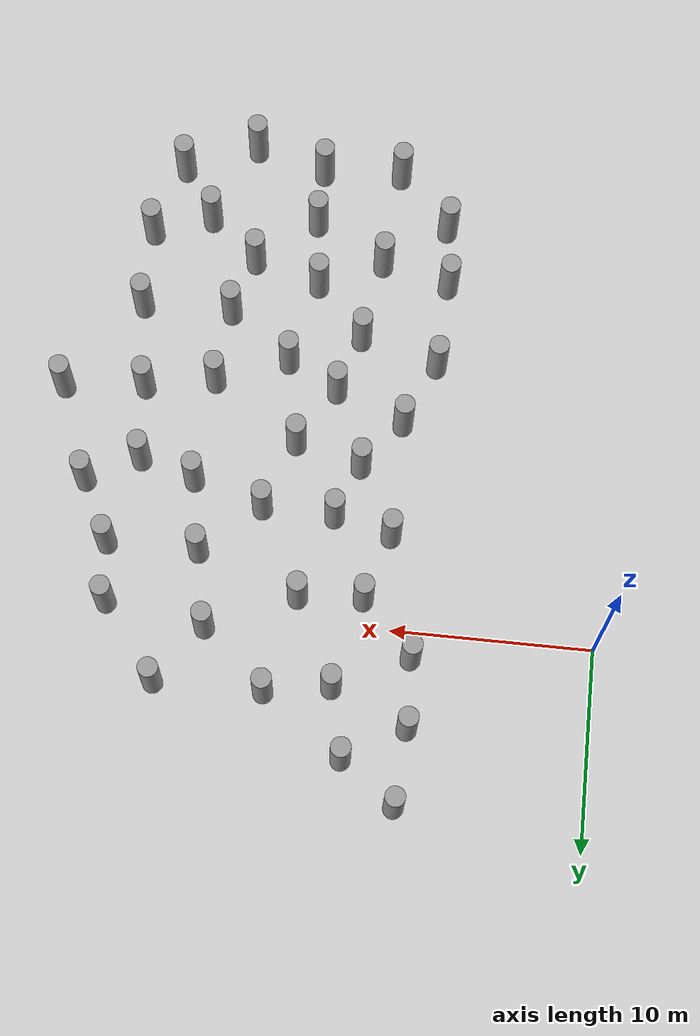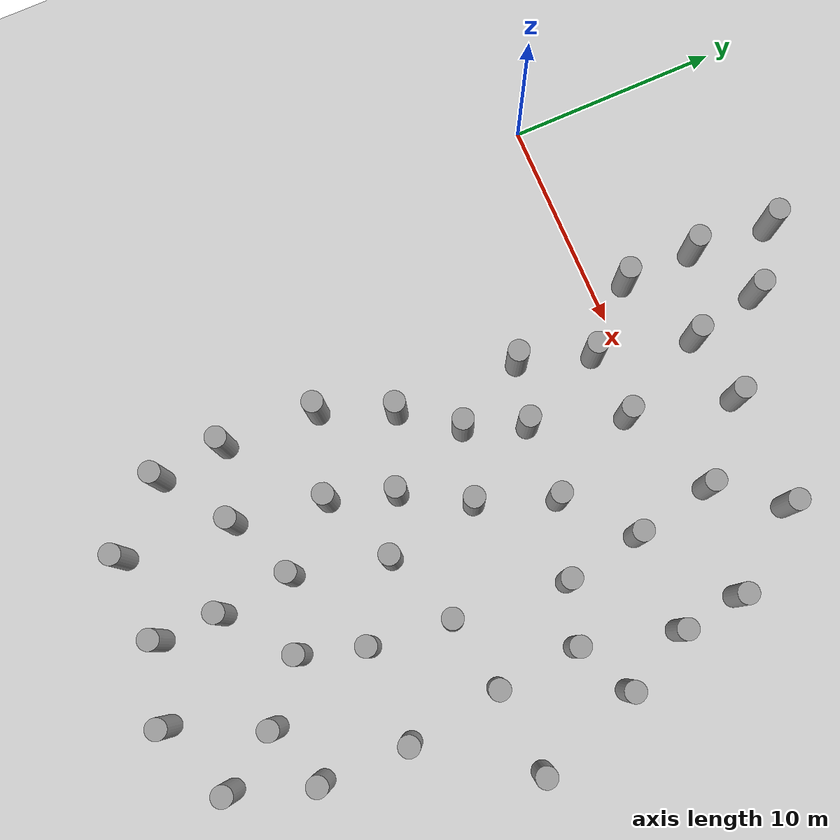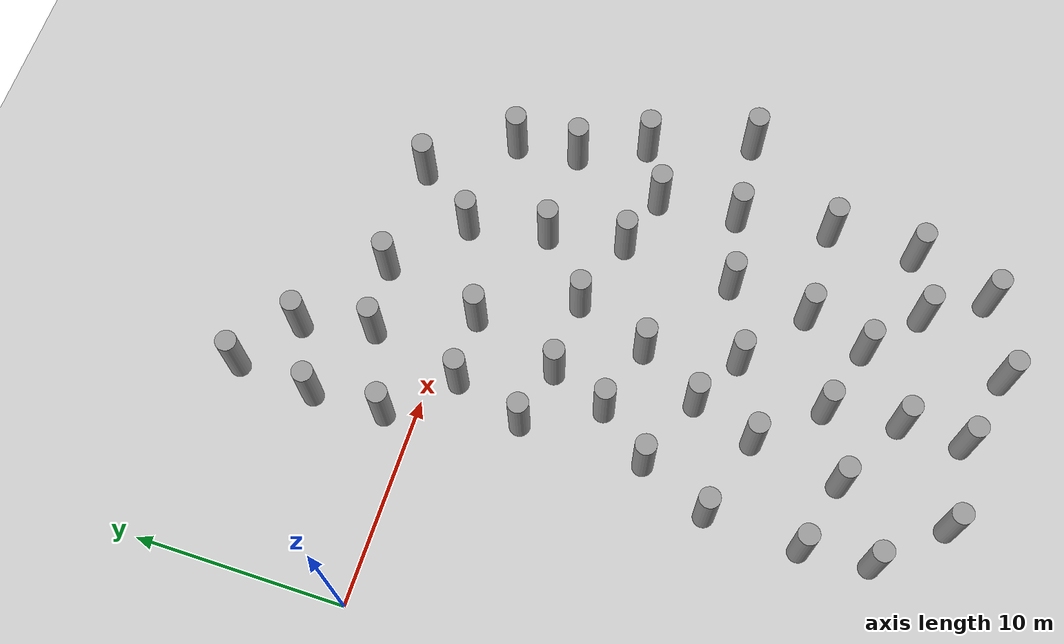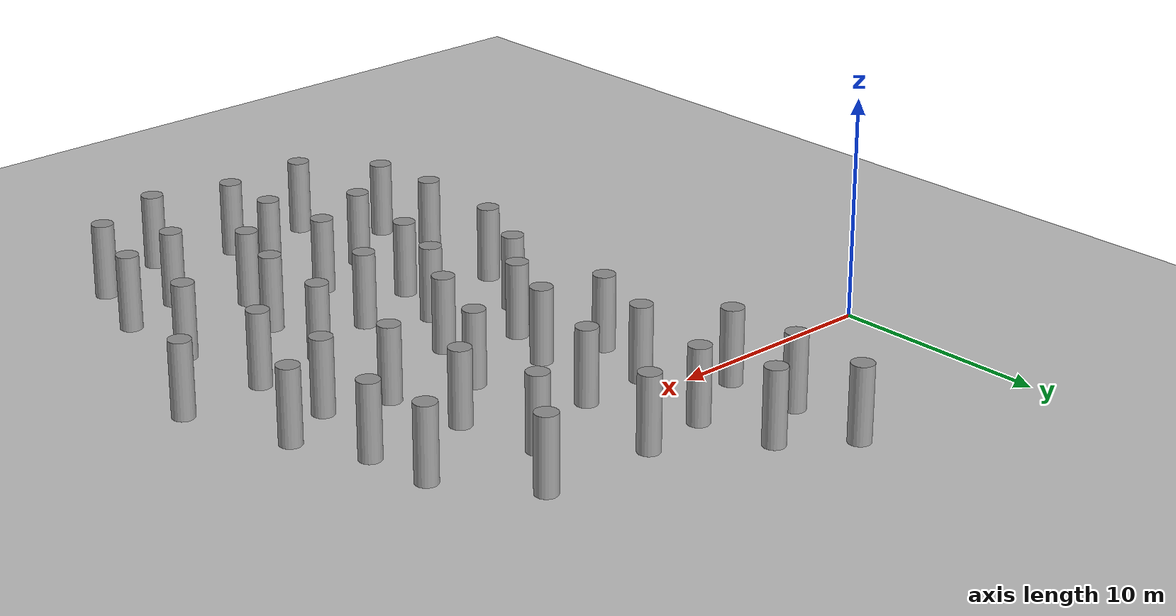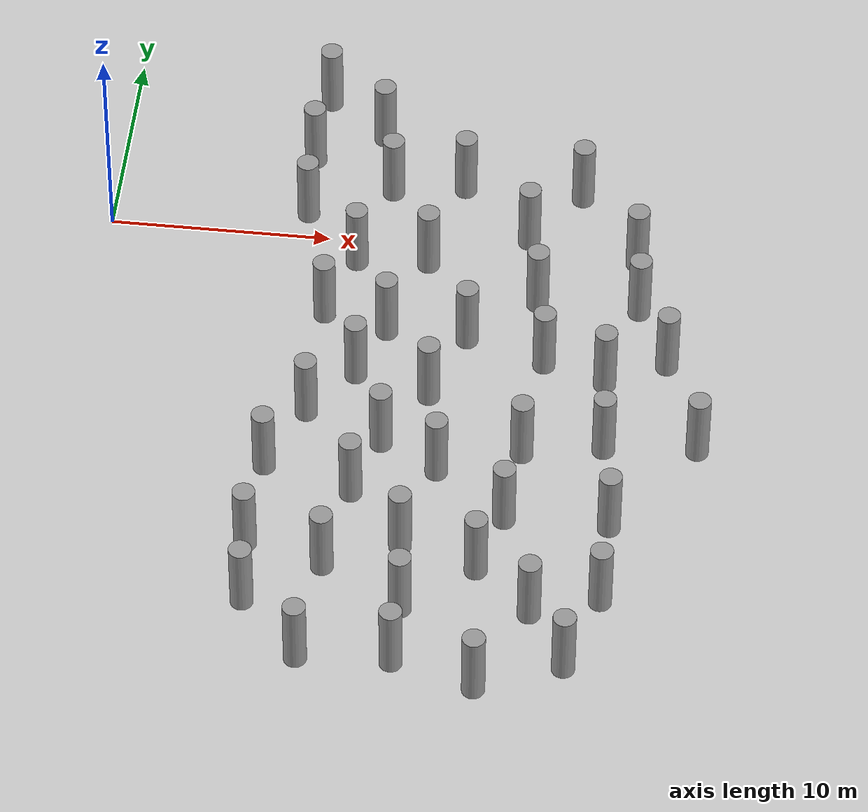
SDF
<sdf version="1.6">
 <world name="default">
  <model name="ground_plane">
   <static>1</static>
   <link name="link">
    <collision name="collision">
     <geometry><plane><normal>0 0 1</normal><size>5000 5000</size></plane></geometry>
     <surface><friction><ode><mu>1</mu><mu2>2</mu2></ode></friction></surface>
    </collision>
    <visual name="runway">
     <cast_shadows>0</cast_shadows>
     <geometry><plane><normal>0 0 1</normal><size>700 700</size></plane></geometry>
     <material>
      <script><uri>file://media/materials/scripts/gazebo.material</uri><name>Gazebo/Gray</name></script>
     </material>
    </visual>
   </link>
  </model>
  <model name="unit_cylinder_clone_2">
   <pose>8.84518 1.39912 1.71107 0 -0 -0.00011</pose>
   <link name="link">
    <inertial>
     <mass>1</mass>
     <inertia><ixx>0.145833</ixx><ixy>0</ixy><ixz>0</ixz><iyy>0.145833</iyy><iyz>0</iyz><izz>0.125</izz></inertia>
    </inertial>
    <collision name="collision">
     <geometry><cylinder><radius>0.5</radius><length>3.42215</length></cylinder></geometry>
    </collision>
    <visual name="visual">
     <geometry><cylinder><radius>0.5</radius><length>3.42215</length></cylinder></geometry>
     <material>
      <script><name>Gazebo/Grey</name><uri>file://media/materials/scripts/gazebo.material</uri></script>
     </material>
    </visual>
   </link>
  </model>
  <model name="unit_cylinder_clone_5">
   <pose>8.74427 4.88031 1.71107 0 -0 -0.000108</pose>
   <link name="link">
    <inertial>
     <mass>1</mass>
     <inertia><ixx>0.145833</ixx><ixy>0</ixy><ixz>0</ixz><iyy>0.145833</iyy><iyz>0</iyz><izz>0.125</izz></inertia>
    </inertial>
    <collision name="collision">
     <geometry><cylinder><radius>0.5</radius><length>3.42215</length></cylinder></geometry>
    </collision>
    <visual name="visual">
     <geometry><cylinder><radius>0.5</radius><length>3.42215</length></cylinder></geometry>
     <material>
      <script><name>Gazebo/Grey</name><uri>file://media/materials/scripts/gazebo.material</uri></script>
     </material>
    </visual>
   </link>
  </model>
  <model name="unit_cylinder_clone_6">
   <pose>9.05434 8.68471 1.71107 0 -0 -0.000108</pose>
   <link name="link">
    <inertial>
     <mass>1</mass>
     <inertia><ixx>0.145833</ixx><ixy>0</ixy><ixz>0</ixz><iyy>0.145833</iyy><iyz>0</iyz><izz>0.125</izz></inertia>
    </inertial>
    <collision name="collision">
     <geometry><cylinder><radius>0.5</radius><length>3.42215</length></cylinder></geometry>
    </collision>
    <visual name="visual">
     <geometry><cylinder><radius>0.5</radius><length>3.42215</length></cylinder></geometry>
     <material>
      <script><name>Gazebo/Grey</name><uri>file://media/materials/scripts/gazebo.material</uri></script>
     </material>
    </visual>
   </link>
  </model>
  <model name="unit_cylinder_clone_3_clone">
   <pose>11.3885 -1.34487 1.71107 0 -0 -0.00011</pose>
   <link name="link">
    <inertial>
     <mass>1</mass>
     <inertia><ixx>0.145833</ixx><ixy>0</ixy><ixz>0</ixz><iyy>0.145833</iyy><iyz>0</iyz><izz>0.125</izz></inertia>
    </inertial>
    <collision name="collision">
     <geometry><cylinder><radius>0.5</radius><length>3.42215</length></cylinder></geometry>
    </collision>
    <visual name="visual">
     <geometry><cylinder><radius>0.5</radius><length>3.42215</length></cylinder></geometry>
     <material>
      <script><name>Gazebo/Grey</name><uri>file://media/materials/scripts/gazebo.material</uri></script>
     </material>
    </visual>
   </link>
  </model>
  <model name="unit_cylinder_clone_3_clone_2">
   <pose>19.0047 0.78443 1.71107 0 -0 -0.000109</pose>
   <link name="link">
    <inertial>
     <mass>1</mass>
     <inertia><ixx>0.145833</ixx><ixy>0</ixy><ixz>0</ixz><iyy>0.145833</iyy><iyz>0</iyz><izz>0.125</izz></inertia>
    </inertial>
    <collision name="collision">
     <geometry><cylinder><radius>0.5</radius><length>3.42215</length></cylinder></geometry>
    </collision>
    <visual name="visual">
     <geometry><cylinder><radius>0.5</radius><length>3.42215</length></cylinder></geometry>
     <material>
      <script><name>Gazebo/Grey</name><uri>file://media/materials/scripts/gazebo.material</uri></script>
     </material>
    </visual>
   </link>
  </model>
  <model name="unit_cylinder_clone_3_clone_5">
   <pose>23.9667 -0.03681 1.71107 0 -0 -0.000108</pose>
   <link name="link">
    <inertial>
     <mass>1</mass>
     <inertia><ixx>0.145833</ixx><ixy>0</ixy><ixz>0</ixz><iyy>0.145833</iyy><iyz>0</iyz><izz>0.125</izz></inertia>
    </inertial>
    <collision name="collision">
     <geometry><cylinder><radius>0.5</radius><length>3.42215</length></cylinder></geometry>
    </collision>
    <visual name="visual">
     <geometry><cylinder><radius>0.5</radius><length>3.42215</length></cylinder></geometry>
     <material>
      <script><name>Gazebo/Grey</name><uri>file://media/materials/scripts/gazebo.material</uri></script>
     </material>
    </visual>
   </link>
  </model>
  <model name="unit_cylinder_clone_3_clone_6">
   <pose>19.7316 -3.02062 1.71107 0 -0 -0.000108</pose>
   <link name="link">
    <inertial>
     <mass>1</mass>
     <inertia><ixx>0.145833</ixx><ixy>0</ixy><ixz>0</ixz><iyy>0.145833</iyy><iyz>0</iyz><izz>0.125</izz></inertia>
    </inertial>
    <collision name="collision">
     <geometry><cylinder><radius>0.5</radius><length>3.42215</length></cylinder></geometry>
    </collision>
    <visual name="visual">
     <geometry><cylinder><radius>0.5</radius><length>3.42215</length></cylinder></geometry>
     <material>
      <script><name>Gazebo/Grey</name><uri>file://media/materials/scripts/gazebo.material</uri></script>
     </material>
    </visual>
   </link>
  </model>
  <model name="unit_cylinder_clone_3_clone_8">
   <pose>20.3589 -6.70544 1.71107 0 -0 -0.000107</pose>
   <link name="link">
    <inertial>
     <mass>1</mass>
     <inertia><ixx>0.145833</ixx><ixy>0</ixy><ixz>0</ixz><iyy>0.145833</iyy><iyz>0</iyz><izz>0.125</izz></inertia>
    </inertial>
    <collision name="collision">
     <geometry><cylinder><radius>0.5</radius><length>3.42215</length></cylinder></geometry>
    </collision>
    <visual name="visual">
     <geometry><cylinder><radius>0.5</radius><length>3.42215</length></cylinder></geometry>
     <material>
      <script><name>Gazebo/Grey</name><uri>file://media/materials/scripts/gazebo.material</uri></script>
     </material>
    </visual>
   </link>
  </model>
  <model name="unit_cylinder_clone_3_clone_10">
   <pose>23.1368 -7.56315 1.71107 0 -0 -0.000107</pose>
   <link name="link">
    <inertial>
     <mass>1</mass>
     <inertia><ixx>0.145833</ixx><ixy>0</ixy><ixz>0</ixz><iyy>0.145833</iyy><iyz>0</iyz><izz>0.125</izz></inertia>
    </inertial>
    <collision name="collision">
     <geometry><cylinder><radius>0.5</radius><length>3.42215</length></cylinder></geometry>
    </collision>
    <visual name="visual">
     <geometry><cylinder><radius>0.5</radius><length>3.42215</length></cylinder></geometry>
     <material>
      <script><name>Gazebo/Grey</name><uri>file://media/materials/scripts/gazebo.material</uri></script>
     </material>
    </visual>
   </link>
  </model>
  <model name="unit_cylinder_clone_3_clone_12">
   <pose>23.4105 -11.4427 1.71107 0 -0 -0.000106</pose>
   <link name="link">
    <inertial>
     <mass>1</mass>
     <inertia><ixx>0.145833</ixx><ixy>0</ixy><ixz>0</ixz><iyy>0.145833</iyy><iyz>0</iyz><izz>0.125</izz></inertia>
    </inertial>
    <collision name="collision">
     <geometry><cylinder><radius>0.5</radius><length>3.42215</length></cylinder></geometry>
    </collision>
    <visual name="visual">
     <geometry><cylinder><radius>0.5</radius><length>3.42215</length></cylinder></geometry>
     <material>
      <script><name>Gazebo/Grey</name><uri>file://media/materials/scripts/gazebo.material</uri></script>
     </material>
    </visual>
   </link>
  </model>
  <model name="unit_cylinder_clone_3_clone_14">
   <pose>19.8819 -12.0865 1.71107 0 -0 -0.000106</pose>
   <link name="link">
    <inertial>
     <mass>1</mass>
     <inertia><ixx>0.145833</ixx><ixy>0</ixy><ixz>0</ixz><iyy>0.145833</iyy><iyz>0</iyz><izz>0.125</izz></inertia>
    </inertial>
    <collision name="collision">
     <geometry><cylinder><radius>0.5</radius><length>3.42215</length></cylinder></geometry>
    </collision>
    <visual name="visual">
     <geometry><cylinder><radius>0.5</radius><length>3.42215</length></cylinder></geometry>
     <material>
      <script><name>Gazebo/Grey</name><uri>file://media/materials/scripts/gazebo.material</uri></script>
     </material>
    </visual>
   </link>
  </model>
  <model name="unit_cylinder_clone_3_clone_18">
   <pose>21.0499 -21.0739 1.71107 0 -0 -0.000105</pose>
   <link name="link">
    <inertial>
     <mass>1</mass>
     <inertia><ixx>0.145833</ixx><ixy>0</ixy><ixz>0</ixz><iyy>0.145833</iyy><iyz>0</iyz><izz>0.125</izz></inertia>
    </inertial>
    <collision name="collision">
     <geometry><cylinder><radius>0.5</radius><length>3.42215</length></cylinder></geometry>
    </collision>
    <visual name="visual">
     <geometry><cylinder><radius>0.5</radius><length>3.42215</length></cylinder></geometry>
     <material>
      <script><name>Gazebo/Grey</name><uri>file://media/materials/scripts/gazebo.material</uri></script>
     </material>
    </visual>
   </link>
  </model>
  <model name="unit_cylinder_clone_3_clone_19">
   <pose>18.5573 -18.8968 1.71107 0 -0 -0.000104</pose>
   <link name="link">
    <inertial>
     <mass>1</mass>
     <inertia><ixx>0.145833</ixx><ixy>0</ixy><ixz>0</ixz><iyy>0.145833</iyy><iyz>0</iyz><izz>0.125</izz></inertia>
    </inertial>
    <collision name="collision">
     <geometry><cylinder><radius>0.5</radius><length>3.42215</length></cylinder></geometry>
    </collision>
    <visual name="visual">
     <geometry><cylinder><radius>0.5</radius><length>3.42215</length></cylinder></geometry>
     <material>
      <script><name>Gazebo/Grey</name><uri>file://media/materials/scripts/gazebo.material</uri></script>
     </material>
    </visual>
   </link>
  </model>
  <model name="unit_cylinder_clone_3_clone_20">
   <pose>23.995 -20.051 1.71107 0 -0 -0.000104</pose>
   <link name="link">
    <inertial>
     <mass>1</mass>
     <inertia><ixx>0.145833</ixx><ixy>0</ixy><ixz>0</ixz><iyy>0.145833</iyy><iyz>0</iyz><izz>0.125</izz></inertia>
    </inertial>
    <collision name="collision">
     <geometry><cylinder><radius>0.5</radius><length>3.42215</length></cylinder></geometry>
    </collision>
    <visual name="visual">
     <geometry><cylinder><radius>0.5</radius><length>3.42215</length></cylinder></geometry>
     <material>
      <script><name>Gazebo/Grey</name><uri>file://media/materials/scripts/gazebo.material</uri></script>
     </material>
    </visual>
   </link>
  </model>
  <model name="unit_cylinder_clone_3_clone_21">
   <pose>22.7638 -23.8535 1.71107 0 -0 -0.000109</pose>
   <link name="link">
    <inertial>
     <mass>1</mass>
     <inertia><ixx>0.145833</ixx><ixy>0</ixy><ixz>0</ixz><iyy>0.145833</iyy><iyz>0</iyz><izz>0.125</izz></inertia>
    </inertial>
    <collision name="collision">
     <geometry><cylinder><radius>0.5</radius><length>3.42215</length></cylinder></geometry>
    </collision>
    <visual name="visual">
     <geometry><cylinder><radius>0.5</radius><length>3.42215</length></cylinder></geometry>
     <material>
      <script><name>Gazebo/Grey</name><uri>file://media/materials/scripts/gazebo.material</uri></script>
     </material>
    </visual>
   </link>
  </model>
  <model name="unit_cylinder_clone_3_clone_25">
   <pose>15.1824 -17.8715 1.71107 0 -0 -0.000109</pose>
   <link name="link">
    <inertial>
     <mass>1</mass>
     <inertia><ixx>0.145833</ixx><ixy>0</ixy><ixz>0</ixz><iyy>0.145833</iyy><iyz>0</iyz><izz>0.125</izz></inertia>
    </inertial>
    <collision name="collision">
     <geometry><cylinder><radius>0.5</radius><length>3.42215</length></cylinder></geometry>
    </collision>
    <visual name="visual">
     <geometry><cylinder><radius>0.5</radius><length>3.42215</length></cylinder></geometry>
     <material>
      <script><name>Gazebo/Grey</name><uri>file://media/materials/scripts/gazebo.material</uri></script>
     </material>
    </visual>
   </link>
  </model>
  <model name="unit_cylinder_clone_3_clone_27">
   <pose>11.9782 -19.3728 1.71107 0 -0 -0.00011</pose>
   <link name="link">
    <inertial>
     <mass>1</mass>
     <inertia><ixx>0.145833</ixx><ixy>0</ixy><ixz>0</ixz><iyy>0.145833</iyy><iyz>0</iyz><izz>0.125</izz></inertia>
    </inertial>
    <collision name="collision">
     <geometry><cylinder><radius>0.5</radius><length>3.42215</length></cylinder></geometry>
    </collision>
    <visual name="visual">
     <geometry><cylinder><radius>0.5</radius><length>3.42215</length></cylinder></geometry>
     <material>
      <script><name>Gazebo/Grey</name><uri>file://media/materials/scripts/gazebo.material</uri></script>
     </material>
    </visual>
   </link>
  </model>
  <model name="unit_cylinder_clone_3_clone_28">
   <pose>15.5089 -24.3234 1.71107 0 -0 -0.00011</pose>
   <link name="link">
    <inertial>
     <mass>1</mass>
     <inertia><ixx>0.145833</ixx><ixy>0</ixy><ixz>0</ixz><iyy>0.145833</iyy><iyz>0</iyz><izz>0.125</izz></inertia>
    </inertial>
    <collision name="collision">
     <geometry><cylinder><radius>0.5</radius><length>3.42215</length></cylinder></geometry>
    </collision>
    <visual name="visual">
     <geometry><cylinder><radius>0.5</radius><length>3.42215</length></cylinder></geometry>
     <material>
      <script><name>Gazebo/Grey</name><uri>file://media/materials/scripts/gazebo.material</uri></script>
     </material>
    </visual>
   </link>
  </model>
  <model name="unit_cylinder_clone_3_clone_29">
   <pose>11.4692 -24.5179 1.71107 0 -0 -0.000109</pose>
   <link name="link">
    <inertial>
     <mass>1</mass>
     <inertia><ixx>0.145833</ixx><ixy>0</ixy><ixz>0</ixz><iyy>0.145833</iyy><iyz>0</iyz><izz>0.125</izz></inertia>
    </inertial>
    <collision name="collision">
     <geometry><cylinder><radius>0.5</radius><length>3.42215</length></cylinder></geometry>
    </collision>
    <visual name="visual">
     <geometry><cylinder><radius>0.5</radius><length>3.42215</length></cylinder></geometry>
     <material>
      <script><name>Gazebo/Grey</name><uri>file://media/materials/scripts/gazebo.material</uri></script>
     </material>
    </visual>
   </link>
  </model>
  <model name="unit_cylinder_clone_3_clone_30">
   <pose>8.81882 -21.6578 1.71107 0 -0 -0.000109</pose>
   <link name="link">
    <inertial>
     <mass>1</mass>
     <inertia><ixx>0.145833</ixx><ixy>0</ixy><ixz>0</ixz><iyy>0.145833</iyy><iyz>0</iyz><izz>0.125</izz></inertia>
    </inertial>
    <collision name="collision">
     <geometry><cylinder><radius>0.5</radius><length>3.42215</length></cylinder></geometry>
    </collision>
    <visual name="visual">
     <geometry><cylinder><radius>0.5</radius><length>3.42215</length></cylinder></geometry>
     <material>
      <script><name>Gazebo/Grey</name><uri>file://media/materials/scripts/gazebo.material</uri></script>
     </material>
    </visual>
   </link>
  </model>
  <model name="unit_cylinder_clone_3_clone_31">
   <pose>8.5434 -18.4531 1.71107 0 -0 -0.00011</pose>
   <link name="link">
    <inertial>
     <mass>1</mass>
     <inertia><ixx>0.145833</ixx><ixy>0</ixy><ixz>0</ixz><iyy>0.145833</iyy><iyz>0</iyz><izz>0.125</izz></inertia>
    </inertial>
    <collision name="collision">
     <geometry><cylinder><radius>0.5</radius><length>3.42215</length></cylinder></geometry>
    </collision>
    <visual name="visual">
     <geometry><cylinder><radius>0.5</radius><length>3.42215</length></cylinder></geometry>
     <material>
      <script><name>Gazebo/Grey</name><uri>file://media/materials/scripts/gazebo.material</uri></script>
     </material>
    </visual>
   </link>
  </model>
  <model name="unit_cylinder_clone_3_clone_33">
   <pose>19.1082 -25.3727 1.71107 0 -0 -0.000109</pose>
   <link name="link">
    <inertial>
     <mass>1</mass>
     <inertia><ixx>0.145833</ixx><ixy>0</ixy><ixz>0</ixz><iyy>0.145833</iyy><iyz>0</iyz><izz>0.125</izz></inertia>
    </inertial>
    <collision name="collision">
     <geometry><cylinder><radius>0.5</radius><length>3.42215</length></cylinder></geometry>
    </collision>
    <visual name="visual">
     <geometry><cylinder><radius>0.5</radius><length>3.42215</length></cylinder></geometry>
     <material>
      <script><name>Gazebo/Grey</name><uri>file://media/materials/scripts/gazebo.material</uri></script>
     </material>
    </visual>
   </link>
  </model>
  <model name="unit_cylinder_clone_3_clone_20_clone">
   <pose>24.0227 -15.8855 1.71107 0 -0 -0.000104</pose>
   <link name="link">
    <inertial>
     <mass>1</mass>
     <inertia><ixx>0.145833</ixx><ixy>0</ixy><ixz>0</ixz><iyy>0.145833</iyy><iyz>0</iyz><izz>0.125</izz></inertia>
    </inertial>
    <collision name="collision">
     <geometry><cylinder><radius>0.5</radius><length>3.42215</length></cylinder></geometry>
    </collision>
    <visual name="visual">
     <geometry><cylinder><radius>0.5</radius><length>3.42215</length></cylinder></geometry>
     <material>
      <script><name>Gazebo/Grey</name><uri>file://media/materials/scripts/gazebo.material</uri></script>
     </material>
    </visual>
   </link>
  </model>
  <model name="unit_cylinder_clone_3_clone_20_clone_0">
   <pose>16.2819 -13.4967 1.71107 0 -0 -0.000104</pose>
   <link name="link">
    <inertial>
     <mass>1</mass>
     <inertia><ixx>0.145833</ixx><ixy>0</ixy><ixz>0</ixz><iyy>0.145833</iyy><iyz>0</iyz><izz>0.125</izz></inertia>
    </inertial>
    <collision name="collision">
     <geometry><cylinder><radius>0.5</radius><length>3.42215</length></cylinder></geometry>
    </collision>
    <visual name="visual">
     <geometry><cylinder><radius>0.5</radius><length>3.42215</length></cylinder></geometry>
     <material>
      <script><name>Gazebo/Grey</name><uri>file://media/materials/scripts/gazebo.material</uri></script>
     </material>
    </visual>
   </link>
  </model>
  <model name="unit_cylinder_clone_3_clone_20_clone_1">
   <pose>15.4767 -9.13401 1.71107 0 -0 -0.000104</pose>
   <link name="link">
    <inertial>
     <mass>1</mass>
     <inertia><ixx>0.145833</ixx><ixy>0</ixy><ixz>0</ixz><iyy>0.145833</iyy><iyz>0</iyz><izz>0.125</izz></inertia>
    </inertial>
    <collision name="collision">
     <geometry><cylinder><radius>0.5</radius><length>3.42215</length></cylinder></geometry>
    </collision>
    <visual name="visual">
     <geometry><cylinder><radius>0.5</radius><length>3.42215</length></cylinder></geometry>
     <material>
      <script><name>Gazebo/Grey</name><uri>file://media/materials/scripts/gazebo.material</uri></script>
     </material>
    </visual>
   </link>
  </model>
  <model name="unit_cylinder_clone_3_clone_20_clone_2">
   <pose>16.8135 -5.57427 1.71107 0 -0 -0.000104</pose>
   <link name="link">
    <inertial>
     <mass>1</mass>
     <inertia><ixx>0.145833</ixx><ixy>0</ixy><ixz>0</ixz><iyy>0.145833</iyy><iyz>0</iyz><izz>0.125</izz></inertia>
    </inertial>
    <collision name="collision">
     <geometry><cylinder><radius>0.5</radius><length>3.42215</length></cylinder></geometry>
    </collision>
    <visual name="visual">
     <geometry><cylinder><radius>0.5</radius><length>3.42215</length></cylinder></geometry>
     <material>
      <script><name>Gazebo/Grey</name><uri>file://media/materials/scripts/gazebo.material</uri></script>
     </material>
    </visual>
   </link>
  </model>
  <model name="unit_cylinder_clone_3_clone_20_clone_3">
   <pose>13.7002 -12.1146 1.71107 0 -0 -0.000104</pose>
   <link name="link">
    <inertial>
     <mass>1</mass>
     <inertia><ixx>0.145833</ixx><ixy>0</ixy><ixz>0</ixz><iyy>0.145833</iyy><iyz>0</iyz><izz>0.125</izz></inertia>
    </inertial>
    <collision name="collision">
     <geometry><cylinder><radius>0.5</radius><length>3.42215</length></cylinder></geometry>
    </collision>
    <visual name="visual">
     <geometry><cylinder><radius>0.5</radius><length>3.42215</length></cylinder></geometry>
     <material>
      <script><name>Gazebo/Grey</name><uri>file://media/materials/scripts/gazebo.material</uri></script>
     </material>
    </visual>
   </link>
  </model>
  <model name="unit_cylinder_clone_3_clone_20_clone_4">
   <pose>12.7168 -15.1124 1.71107 0 -0 -0.000103</pose>
   <link name="link">
    <inertial>
     <mass>1</mass>
     <inertia><ixx>0.145833</ixx><ixy>0</ixy><ixz>0</ixz><iyy>0.145833</iyy><iyz>0</iyz><izz>0.125</izz></inertia>
    </inertial>
    <collision name="collision">
     <geometry><cylinder><radius>0.5</radius><length>3.42215</length></cylinder></geometry>
    </collision>
    <visual name="visual">
     <geometry><cylinder><radius>0.5</radius><length>3.42215</length></cylinder></geometry>
     <material>
      <script><name>Gazebo/Grey</name><uri>file://media/materials/scripts/gazebo.material</uri></script>
     </material>
    </visual>
   </link>
  </model>
  <model name="unit_cylinder_clone_3_clone_20_clone_5">
   <pose>8.78435 -13.9792 1.71107 0 -0 -0.000103</pose>
   <link name="link">
    <inertial>
     <mass>1</mass>
     <inertia><ixx>0.145833</ixx><ixy>0</ixy><ixz>0</ixz><iyy>0.145833</iyy><iyz>0</iyz><izz>0.125</izz></inertia>
    </inertial>
    <collision name="collision">
     <geometry><cylinder><radius>0.5</radius><length>3.42215</length></cylinder></geometry>
    </collision>
    <visual name="visual">
     <geometry><cylinder><radius>0.5</radius><length>3.42215</length></cylinder></geometry>
     <material>
      <script><name>Gazebo/Grey</name><uri>file://media/materials/scripts/gazebo.material</uri></script>
     </material>
    </visual>
   </link>
  </model>
  <model name="unit_cylinder_clone_3_clone_20_clone_6">
   <pose>10.2291 -10.6693 1.71107 0 -0 -0.000103</pose>
   <link name="link">
    <inertial>
     <mass>1</mass>
     <inertia><ixx>0.145833</ixx><ixy>0</ixy><ixz>0</ixz><iyy>0.145833</iyy><iyz>0</iyz><izz>0.125</izz></inertia>
    </inertial>
    <collision name="collision">
     <geometry><cylinder><radius>0.5</radius><length>3.42215</length></cylinder></geometry>
    </collision>
    <visual name="visual">
     <geometry><cylinder><radius>0.5</radius><length>3.42215</length></cylinder></geometry>
     <material>
      <script><name>Gazebo/Grey</name><uri>file://media/materials/scripts/gazebo.material</uri></script>
     </material>
    </visual>
   </link>
  </model>
  <model name="unit_cylinder_clone_3_clone_20_clone_8">
   <pose>12.1356 -8.21148 1.71107 0 -0 -0.000102</pose>
   <link name="link">
    <inertial>
     <mass>1</mass>
     <inertia><ixx>0.145833</ixx><ixy>0</ixy><ixz>0</ixz><iyy>0.145833</iyy><iyz>0</iyz><izz>0.125</izz></inertia>
    </inertial>
    <collision name="collision">
     <geometry><cylinder><radius>0.5</radius><length>3.42215</length></cylinder></geometry>
    </collision>
    <visual name="visual">
     <geometry><cylinder><radius>0.5</radius><length>3.42215</length></cylinder></geometry>
     <material>
      <script><name>Gazebo/Grey</name><uri>file://media/materials/scripts/gazebo.material</uri></script>
     </material>
    </visual>
   </link>
  </model>
  <model name="unit_cylinder_clone_3_clone_20_clone_9">
   <pose>13.203 -5.46208 1.71107 0 -0 -0.000102</pose>
   <link name="link">
    <inertial>
     <mass>1</mass>
     <inertia><ixx>0.145833</ixx><ixy>0</ixy><ixz>0</ixz><iyy>0.145833</iyy><iyz>0</iyz><izz>0.125</izz></inertia>
    </inertial>
    <collision name="collision">
     <geometry><cylinder><radius>0.5</radius><length>3.42215</length></cylinder></geometry>
    </collision>
    <visual name="visual">
     <geometry><cylinder><radius>0.5</radius><length>3.42215</length></cylinder></geometry>
     <material>
      <script><name>Gazebo/Grey</name><uri>file://media/materials/scripts/gazebo.material</uri></script>
     </material>
    </visual>
   </link>
  </model>
  <model name="unit_cylinder_clone_3_clone_20_clone_10">
   <pose>10.3207 -4.71799 1.71107 0 -0 -0.000102</pose>
   <link name="link">
    <inertial>
     <mass>1</mass>
     <inertia><ixx>0.145833</ixx><ixy>0</ixy><ixz>0</ixz><iyy>0.145833</iyy><iyz>0</iyz><izz>0.125</izz></inertia>
    </inertial>
    <collision name="collision">
     <geometry><cylinder><radius>0.5</radius><length>3.42215</length></cylinder></geometry>
    </collision>
    <visual name="visual">
     <geometry><cylinder><radius>0.5</radius><length>3.42215</length></cylinder></geometry>
     <material>
      <script><name>Gazebo/Grey</name><uri>file://media/materials/scripts/gazebo.material</uri></script>
     </material>
    </visual>
   </link>
  </model>
  <model name="unit_cylinder_clone_3_clone_19_clone">
   <pose>19.4734 -15.9285 1.71107 0 -0 -0.000104</pose>
   <link name="link">
    <inertial>
     <mass>1</mass>
     <inertia><ixx>0.145833</ixx><ixy>0</ixy><ixz>0</ixz><iyy>0.145833</iyy><iyz>0</iyz><izz>0.125</izz></inertia>
    </inertial>
    <collision name="collision">
     <geometry><cylinder><radius>0.5</radius><length>3.42215</length></cylinder></geometry>
    </collision>
    <visual name="visual">
     <geometry><cylinder><radius>0.5</radius><length>3.42215</length></cylinder></geometry>
     <material>
      <script><name>Gazebo/Grey</name><uri>file://media/materials/scripts/gazebo.material</uri></script>
     </material>
    </visual>
   </link>
  </model>
  <model name="unit_cylinder_clone_3_clone_19_clone_0">
   <pose>15.5623 -21.3516 1.71107 0 -0 -0.000104</pose>
   <link name="link">
    <inertial>
     <mass>1</mass>
     <inertia><ixx>0.145833</ixx><ixy>0</ixy><ixz>0</ixz><iyy>0.145833</iyy><iyz>0</iyz><izz>0.125</izz></inertia>
    </inertial>
    <collision name="collision">
     <geometry><cylinder><radius>0.5</radius><length>3.42215</length></cylinder></geometry>
    </collision>
    <visual name="visual">
     <geometry><cylinder><radius>0.5</radius><length>3.42215</length></cylinder></geometry>
     <material>
      <script><name>Gazebo/Grey</name><uri>file://media/materials/scripts/gazebo.material</uri></script>
     </material>
    </visual>
   </link>
  </model>
  <model name="unit_cylinder_clone_3_clone_19_clone_4">
   <pose>12.5413 3.20051 1.71107 0 -0 -0.000105</pose>
   <link name="link">
    <inertial>
     <mass>1</mass>
     <inertia><ixx>0.145833</ixx><ixy>0</ixy><ixz>0</ixz><iyy>0.145833</iyy><iyz>0</iyz><izz>0.125</izz></inertia>
    </inertial>
    <collision name="collision">
     <geometry><cylinder><radius>0.5</radius><length>3.42215</length></cylinder></geometry>
    </collision>
    <visual name="visual">
     <geometry><cylinder><radius>0.5</radius><length>3.42215</length></cylinder></geometry>
     <material>
      <script><name>Gazebo/Grey</name><uri>file://media/materials/scripts/gazebo.material</uri></script>
     </material>
    </visual>
   </link>
  </model>
  <model name="unit_cylinder_clone_3_clone_19_clone_5">
   <pose>15.8142 3.7263 1.71107 0 -0 -0.000104</pose>
   <link name="link">
    <inertial>
     <mass>1</mass>
     <inertia><ixx>0.145833</ixx><ixy>0</ixy><ixz>0</ixz><iyy>0.145833</iyy><iyz>0</iyz><izz>0.125</izz></inertia>
    </inertial>
    <collision name="collision">
     <geometry><cylinder><radius>0.5</radius><length>3.42215</length></cylinder></geometry>
    </collision>
    <visual name="visual">
     <geometry><cylinder><radius>0.5</radius><length>3.42215</length></cylinder></geometry>
     <material>
      <script><name>Gazebo/Grey</name><uri>file://media/materials/scripts/gazebo.material</uri></script>
     </material>
    </visual>
   </link>
  </model>
  <model name="unit_cylinder_clone_3_clone_19_clone_6">
   <pose>21.1973 3.72672 1.71107 0 -0 -0.000104</pose>
   <link name="link">
    <inertial>
     <mass>1</mass>
     <inertia><ixx>0.145833</ixx><ixy>0</ixy><ixz>0</ixz><iyy>0.145833</iyy><iyz>0</iyz><izz>0.125</izz></inertia>
    </inertial>
    <collision name="collision">
     <geometry><cylinder><radius>0.5</radius><length>3.42215</length></cylinder></geometry>
    </collision>
    <visual name="visual">
     <geometry><cylinder><radius>0.5</radius><length>3.42215</length></cylinder></geometry>
     <material>
      <script><name>Gazebo/Grey</name><uri>file://media/materials/scripts/gazebo.material</uri></script>
     </material>
    </visual>
   </link>
  </model>
  <model name="unit_cylinder_clone_3_clone_19_clone_7">
   <pose>11.7722 6.63019 1.71107 0 -0 -0.000105</pose>
   <link name="link">
    <inertial>
     <mass>1</mass>
     <inertia><ixx>0.145833</ixx><ixy>0</ixy><ixz>0</ixz><iyy>0.145833</iyy><iyz>0</iyz><izz>0.125</izz></inertia>
    </inertial>
    <collision name="collision">
     <geometry><cylinder><radius>0.5</radius><length>3.42215</length></cylinder></geometry>
    </collision>
    <visual name="visual">
     <geometry><cylinder><radius>0.5</radius><length>3.42215</length></cylinder></geometry>
     <material>
      <script><name>Gazebo/Grey</name><uri>file://media/materials/scripts/gazebo.material</uri></script>
     </material>
    </visual>
   </link>
  </model>
  <model name="unit_cylinder_clone_3_clone_19_clone_8">
   <pose>14.615 -1.15302 1.71107 0 -0 -0.000105</pose>
   <link name="link">
    <inertial>
     <mass>1</mass>
     <inertia><ixx>0.145833</ixx><ixy>0</ixy><ixz>0</ixz><iyy>0.145833</iyy><iyz>0</iyz><izz>0.125</izz></inertia>
    </inertial>
    <collision name="collision">
     <geometry><cylinder><radius>0.5</radius><length>3.42215</length></cylinder></geometry>
    </collision>
    <visual name="visual">
     <geometry><cylinder><radius>0.5</radius><length>3.42215</length></cylinder></geometry>
     <material>
      <script><name>Gazebo/Grey</name><uri>file://media/materials/scripts/gazebo.material</uri></script>
     </material>
    </visual>
   </link>
  </model>
  <model name="unit_cylinder_clone_3_clone_19_clone_9">
   <pose>24.3033 -3.05902 1.71107 0 -0 -0.000104</pose>
   <link name="link">
    <inertial>
     <mass>1</mass>
     <inertia><ixx>0.145833</ixx><ixy>0</ixy><ixz>0</ixz><iyy>0.145833</iyy><iyz>0</iyz><izz>0.125</izz></inertia>
    </inertial>
    <collision name="collision">
     <geometry><cylinder><radius>0.5</radius><length>3.42215</length></cylinder></geometry>
    </collision>
    <visual name="visual">
     <geometry><cylinder><radius>0.5</radius><length>3.42215</length></cylinder></geometry>
     <material>
      <script><name>Gazebo/Grey</name><uri>file://media/materials/scripts/gazebo.material</uri></script>
     </material>
    </visual>
   </link>
  </model>
  <model name="unit_cylinder_clone_3_clone_19_clone_10">
   <pose>25.7867 -6.219 1.71107 0 -0 -0.000104</pose>
   <link name="link">
    <inertial>
     <mass>1</mass>
     <inertia><ixx>0.145833</ixx><ixy>0</ixy><ixz>0</ixz><iyy>0.145833</iyy><iyz>0</iyz><izz>0.125</izz></inertia>
    </inertial>
    <collision name="collision">
     <geometry><cylinder><radius>0.5</radius><length>3.42215</length></cylinder></geometry>
    </collision>
    <visual name="visual">
     <geometry><cylinder><radius>0.5</radius><length>3.42215</length></cylinder></geometry>
     <material>
      <script><name>Gazebo/Grey</name><uri>file://media/materials/scripts/gazebo.material</uri></script>
     </material>
    </visual>
   </link>
  </model>
  <model name="unit_cylinder_clone_3_clone_19_clone_11">
   <pose>27.4896 -11.0999 1.71107 0 -0 -0.000104</pose>
   <link name="link">
    <inertial>
     <mass>1</mass>
     <inertia><ixx>0.145833</ixx><ixy>0</ixy><ixz>0</ixz><iyy>0.145833</iyy><iyz>0</iyz><izz>0.125</izz></inertia>
    </inertial>
    <collision name="collision">
     <geometry><cylinder><radius>0.5</radius><length>3.42215</length></cylinder></geometry>
    </collision>
    <visual name="visual">
     <geometry><cylinder><radius>0.5</radius><length>3.42215</length></cylinder></geometry>
     <material>
      <script><name>Gazebo/Grey</name><uri>file://media/materials/scripts/gazebo.material</uri></script>
     </material>
    </visual>
   </link>
  </model>
 </world>
</sdf>
